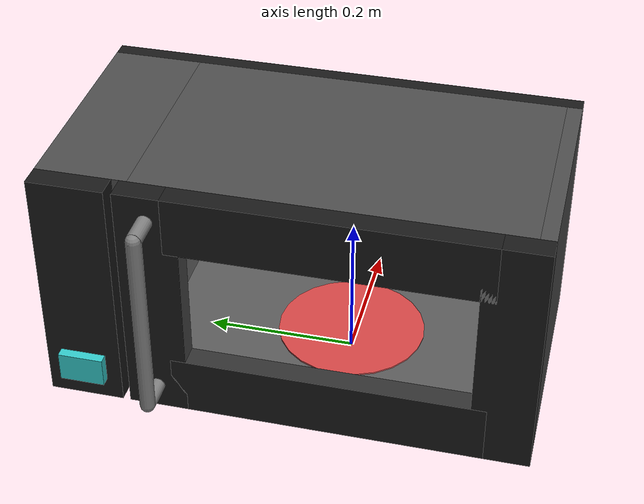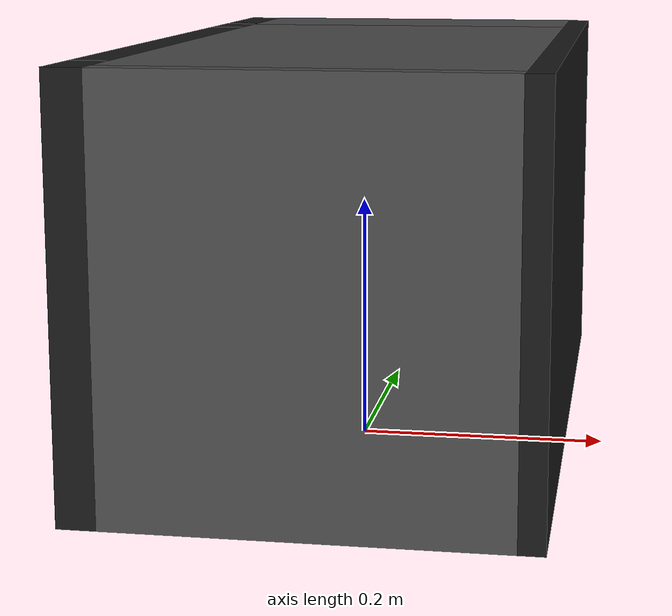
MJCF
<?xml version="1.0" encoding="utf-8"?>
<!-- from https://github.com/vikashplus/mj_envs/tree/master/mj_envs/hand_manipulation_suite/assets -->
<!-- Information about door can be found in this paper: https://arxiv.org/pdf/1709.10087.pdf -->

<mujoco model="microwave">
    <texture file="../textures/steel-brushed.png" type="cube" name="steel" />
    <material name="MatSteel" texture="steel" specular="1" shininess="0.3" rgba="0.9 0.9 0.9 1" />

    <worldbody>
      <body>
        <body name="object">
          <inertial pos="0 0 0" mass="1.47392" diaginertia="0.472637 0.580381 0.109316"/>
          <site name="origin" pos="0 0 0" rgba="0 0 0 0" size="0.005"/>
          <geom pos="0 0.0 0.015" size="0.15 0.25 0.015" type="box" friction="1 1 1" group="0" rgba="0.3 0.3 0.3 1"/>
          <geom pos="0 0.0 0.315" size="0.15 0.25 0.015" type="box" friction="1 1 1" group="0" rgba="0.3 0.3 0.3 1"/>

          <geom pos="0 0.0 0.031" size="0.1 0.001" type="cylinder" friction="1 1 1" group="0" rgba="0.9 0.2 0.2 1"/>

          <geom pos="0 0.31 0.165" size="0.15 0.06 0.165" type="box" friction="1 1 1" group="0" rgba="0.3 0.3 0.3 1"/>
          <geom pos="-0.165 0.32 0.165" size="0.015 0.05 0.165" type="box" friction="1 1 1" group="0" rgba="0.1 0.1 0.1 1"/>

          <geom pos="0 -0.26 0.165" size="0.15 0.01 0.165" type="box" friction="1 1 1" group="0" rgba="0.3 0.3 0.3 1"/>

          <geom pos="0.16 0.05 0.165" size="0.01 0.32 0.165" type="box" friction="1 1 1" group="0" rgba="0.1 0.1 0.1 1"/>

          <body name="button" pos="-0.168 0.32 0.05">
            <inertial pos="0 0 0" mass="0.001" diaginertia="0.001 0.001 0.001" />
            <geom pos="-0.015 0 0" size="0.01 0.03 0.02" type="box" friction="1 1 1" rgba="0.2 0.8 0.8 1"
              group="0" />
            <joint type="slide" pos="0 0 0" axis="1 0 0" range="0.0 0.01" limited="true"
              springref="0.0" stiffness="0.5" damping="0.005" />
            <site name="button" pos="0 0 0" size="0.02" rgba="0 0 1 0" />
          </body>

          <body name="door" pos="-0.15 -0.27 0">

            <inertial pos="0 0 0" mass="0.1" diaginertia="0.05 0.05 0.01"/>
            <joint name="hinge" pos="0 0 0" axis="0 0 1" range="0.0 3.0" limited="true"
              damping="1" frictionloss="1" stiffness="10" springref="0."
              />

            <geom pos="-0.015 0.265 0.04" size="0.015 0.205 0.04" type="box" friction="1 1 1" group="0" rgba="0.1 0.1 0.1 1"/>
            <geom pos="-0.015 0.265 0.29" size="0.015 0.205 0.04" type="box" friction="1 1 1" group="0" rgba="0.1 0.1 0.1 1"/>

            <geom pos="-0.015 0.04 0.165" size="0.015 0.04 0.165" type="box" friction="1 1 1" group="0" rgba="0.1 0.1 0.1 1"/>
            <geom pos="-0.015 0.49 0.165" size="0.015 0.04 0.165" type="box" friction="1 1 1" group="0" rgba="0.1 0.1 0.1 1"/>

            <geom pos="-0.015 0.265 0.165" size="0.015 0.185 0.085" type="box" friction="1 1 1" group="0" rgba="1.0 1.0 1.0 0.1"/>

            <body name="handle" pos="-0.03 0.49 0.165">
              <inertial pos="-0.01 0 0" quat="0.365653 0.605347 -0.36522 0.605365" mass="0.01" diaginertia="0.01 0.01 0.0025" />
              <geom fromto="0 0  0.13 -0.04 0  0.13" size="0.01" type="cylinder" group="0" name="handle_up"/>
              <geom fromto="0 0 -0.13 -0.04 0 -0.13" size="0.01" type="cylinder" group="0" name="handle_bottom"/>
              <geom fromto="-0.04 0 -0.13 -0.04 0 0.13" size="0.01" type="capsule" group="0" name="front_handle"/>
              <!-- Don't render the door handle site by default -->
              <site name="handle" pos="0.125 -0.10 0" size="0.02" rgba="0 0 1 0" />
            </body>

          </body>
        </body>
        <site name="bottom_site" pos="0 0 -0.0207" rgba="0 0 0 0" size="0.005"/>
        <site name="top_site" pos="0 0 0.007" rgba="0 0 0 0" size="0.005"/>
        <site name="horizontal_radius_site" pos="0 0 0" rgba="0 0 0 0" size="0.003"/>
      </body>

    </worldbody>
</mujoco>
